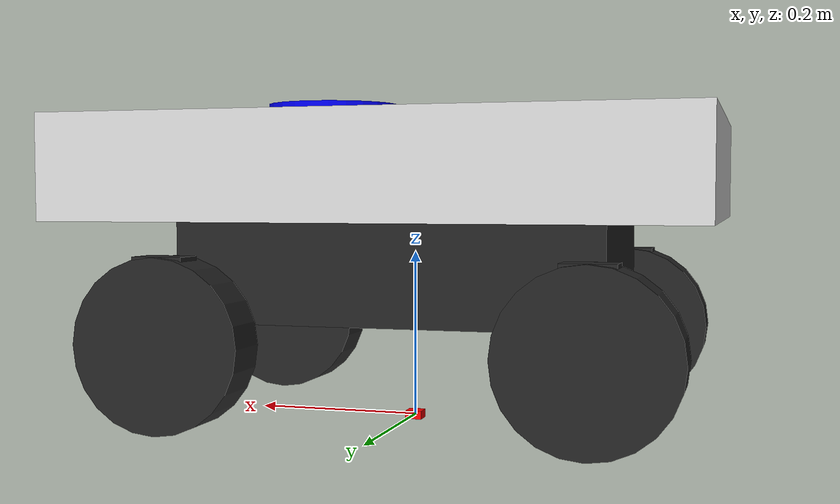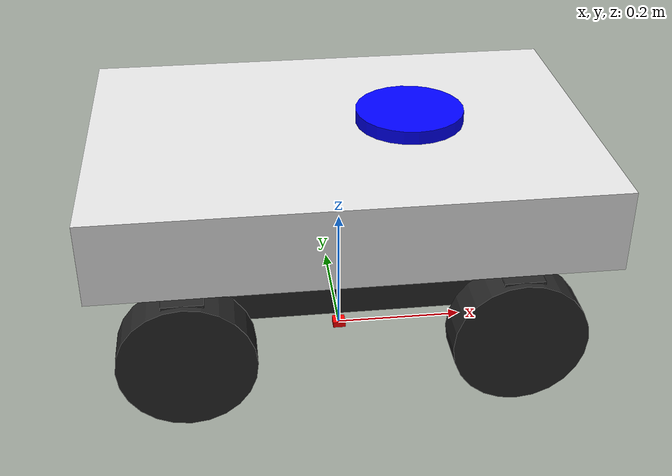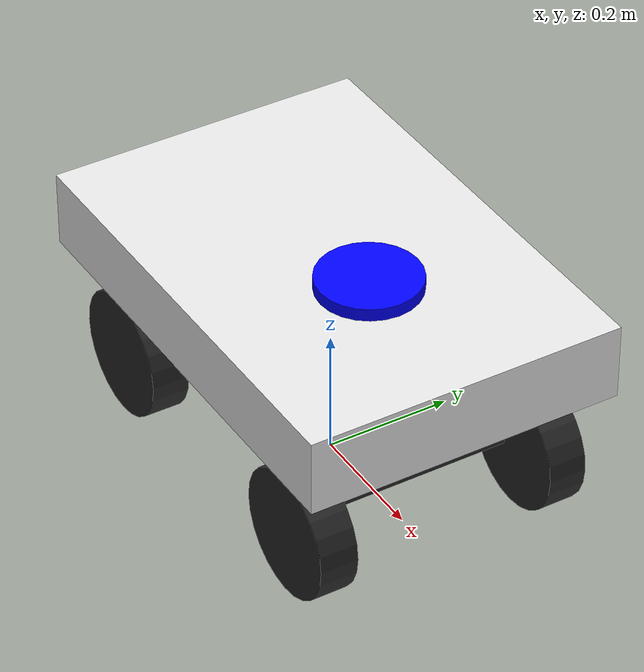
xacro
<?xml version="1.0" ?>
<robot name="four_wheel_independent_drive_and_steering_vehicle" xmlns:xacro="http://www.ros.org/wiki/xacro">

  <material name="black">
    <color rgba="0.15 0.15 0.15 1.0"/>
  </material>
  <material name="white">
    <color rgba="0.9 0.9 0.9 1.0"/>
  </material>
  <material name="red">
    <color rgba="1.0 0.0 0.0 1.0"/>
  </material>
  <material name="blue">
    <color rgba="0.0 0.0 1.0 1.0"/>
  </material>

  <link name="base_footprint"/>

  <link name="base_link"/>
  <joint name="footprint_to_base" type="fixed">
    <origin rpy="0 0 0" xyz="0 0 0"/>
    <parent link="base_footprint"/>
    <child link="base_link"/>
  </joint>

  <link name="body">
    <visual>
      <origin xyz="0 0 0.06" rpy="0 0 0"/>
      <geometry><box size="0.73 0.50 0.12"/></geometry>
      <material name="white"/>
    </visual>
    <visual>
      <origin xyz="0 0 -0.06" rpy="0 0 0"/>
      <geometry><box size="0.50 0.28 0.12"/></geometry>
      <material name="black"/>
    </visual>
    <collision>
      <origin xyz="0 0 0.0625" rpy="0 0 0"/>
      <geometry><box size="0.73 0.50 0.365"/></geometry>
    </collision>
    <inertial>
      <origin xyz="0 0 -0.15" rpy="0 0 0"/>
      <mass value="90.0"/>
      <inertia ixx="2.0" ixy="0" ixz="0" iyy="4.0" iyz="0" izz="5.0"/>
    </inertial>
  </link>

  <joint name="base_joint" type="fixed">
    <origin rpy="0 0 0" xyz="0 0 0.24"/>
    <parent link="base_link"/>
    <child link="body"/>
  </joint>

  <!-- ===== 底盘主体 (body) 摩擦/碰撞属性 ===== -->
  <!-- 实车模式：不需要 Gazebo 标签，已删除 -->

  <link name="laser_link">
    <visual>
      <geometry><cylinder length="0.025" radius="0.025"/></geometry>
      <material name="blue"/>
    </visual>
    <collision>
      <geometry><cylinder length="0.025" radius="0.025"/></geometry>
    </collision>
    <inertial>
      <mass value="0.1"/>
      <inertia ixx="0.0001" ixy="0" ixz="0" iyy="0.0001" iyz="0" izz="0.0001"/>
    </inertial>
  </link>
  <joint name="laser_joint" type="fixed">
    <origin rpy="0 0 0" xyz="0.105 0 0.35"/> <parent link="base_link"/>
    <child link="laser_link"/>
  </joint>

  <link name="imu_link">
    <visual>
      <geometry><box size="0.02 0.02 0.01"/></geometry>
      <material name="red"/>
    </visual>
    <inertial>
      <mass value="0.01"/>
      <inertia ixx="0.00001" ixy="0" ixz="0" iyy="0.00001" iyz="0" izz="0.00001"/>
    </inertial>
  </link>
  <!-- IMU 独立安装在底盘 base_link 上（不再挂在废弃的速腾雷达下） -->
  <joint name="imu_joint" type="fixed">
    <origin rpy="0 0 0" xyz="0 0 0"/>
    <parent link="base_link"/>
    <child link="imu_link"/>
  </joint>

  <xacro:macro name="wheel_module" params="prefix x_offset y_offset">

    <link name="${prefix}_wheel_steer">
      <visual>
        <origin rpy="0 0 0" xyz="0 0 -0.05"/>
        <geometry><box size="0.06 0.04 0.10"/></geometry>
        <material name="black"/>
      </visual>
      <inertial>
        <mass value="1.0"/>
        <inertia ixx="0.005" ixy="0" ixz="0" iyy="0.005" iyz="0" izz="0.005"/>
      </inertial>
    </link>
    <joint name="${prefix}_wheel_steer_joint" type="fixed">
      <origin rpy="0 0 0" xyz="${x_offset} ${y_offset} -0.04"/>
      <parent link="body"/>
      <child link="${prefix}_wheel_steer"/>
    </joint>

    <link name="${prefix}_wheel_rotor">
      <visual>
        <geometry>
          <cylinder length="0.06" radius="0.10"/>
        </geometry>
        <material name="black"/>
      </visual>
      <collision>
        <geometry>
          <sphere radius="0.10"/>
        </geometry>
      </collision>
      <inertial>
        <mass value="4.0"/>
        <inertia ixx="0.012" ixy="0" ixz="0" iyy="0.012" iyz="0" izz="0.02"/>
      </inertial>
    </link>

    <joint name="${prefix}_wheel_rotor_joint" type="fixed">
      <origin rpy="-1.570796 0 0" xyz="0 0 -0.10"/>
      <parent link="${prefix}_wheel_steer"/>
      <child link="${prefix}_wheel_rotor"/>
    </joint>

    <!-- 实车模式：已删除 wheel_rotor 的 Gazebo 摩擦标签 -->
  </xacro:macro>

  <xacro:wheel_module prefix="front_left" x_offset="0.24" y_offset="0.19" />
  <xacro:wheel_module prefix="front_right" x_offset="0.24" y_offset="-0.19" />
  <xacro:wheel_module prefix="rear_left" x_offset="-0.24" y_offset="0.19" />
  <xacro:wheel_module prefix="rear_right" x_offset="-0.24" y_offset="-0.19" />

  <!-- ===== 实车速腾雷达 (rslidar) 固定安装 ===== -->
  <!-- 安装位置: 车顶中心向前 10.5cm, 垫 0.45cm 塑料板, 方向与 base_link 一致 -->
  <link name="rslidar">
    <visual>
      <geometry><cylinder length="0.06" radius="0.08"/></geometry>
      <material name="blue"/>
    </visual>
    <inertial>
      <mass value="1.0"/>
      <inertia ixx="0.001" ixy="0" ixz="0" iyy="0.001" iyz="0" izz="0.001"/>
    </inertial>
  </link>
  <joint name="rslidar_joint" type="fixed">
    <origin rpy="0 0 0" xyz="0.105 0 0.35"/>
    <parent link="base_link"/>
    <child link="rslidar"/>
  </joint>

  <!-- ===== 实车模式：以下已删除所有 Gazebo 传感器插件和 ros2_control 硬件接口 ===== -->

</robot>
